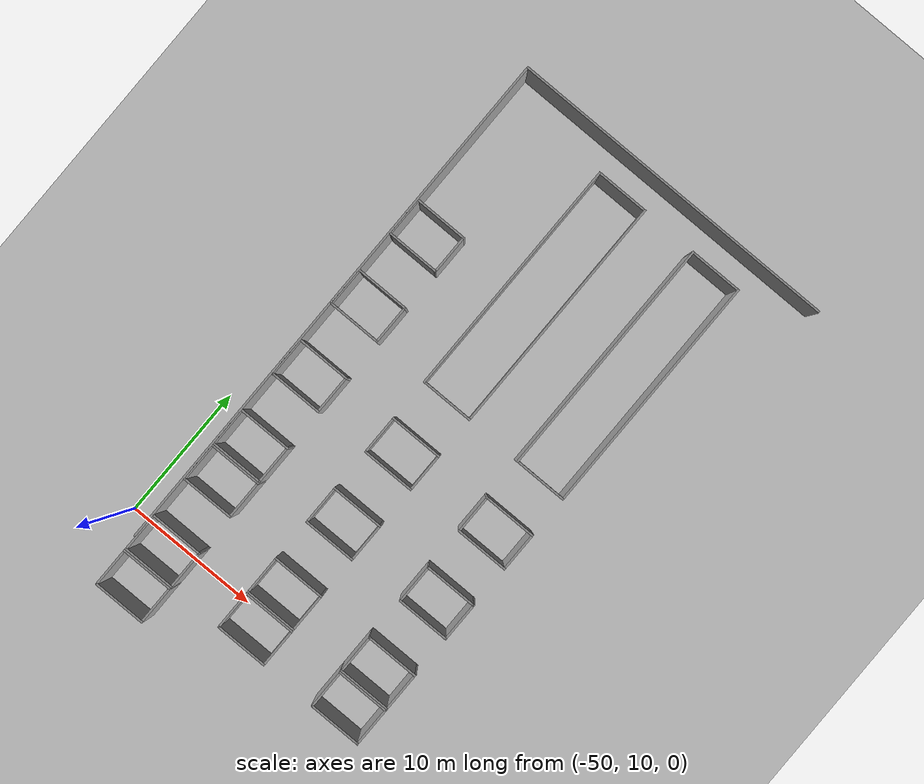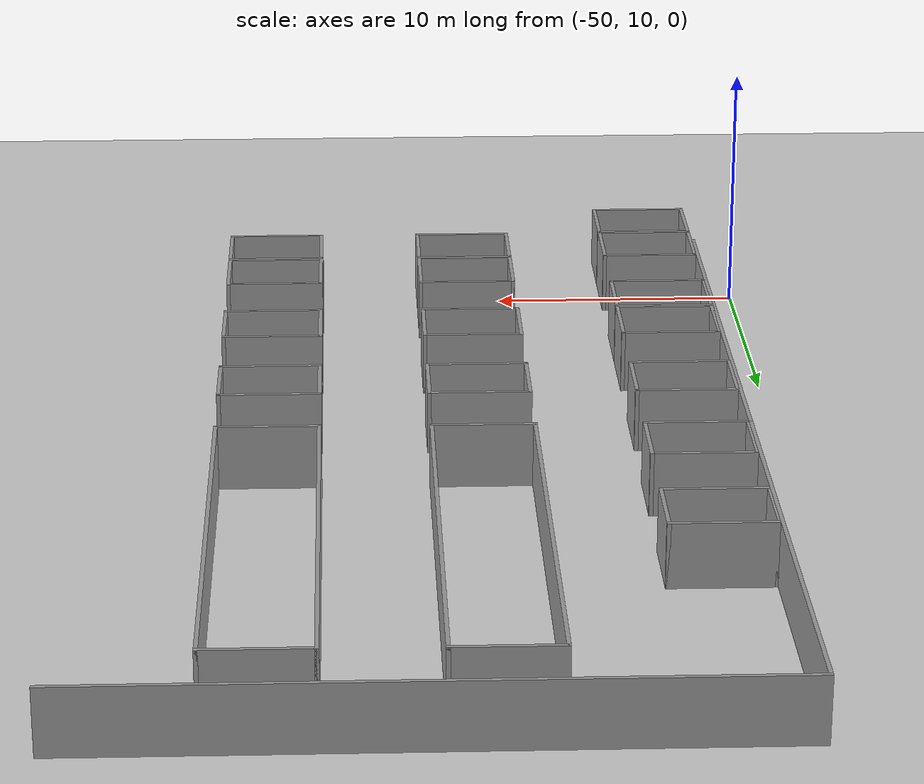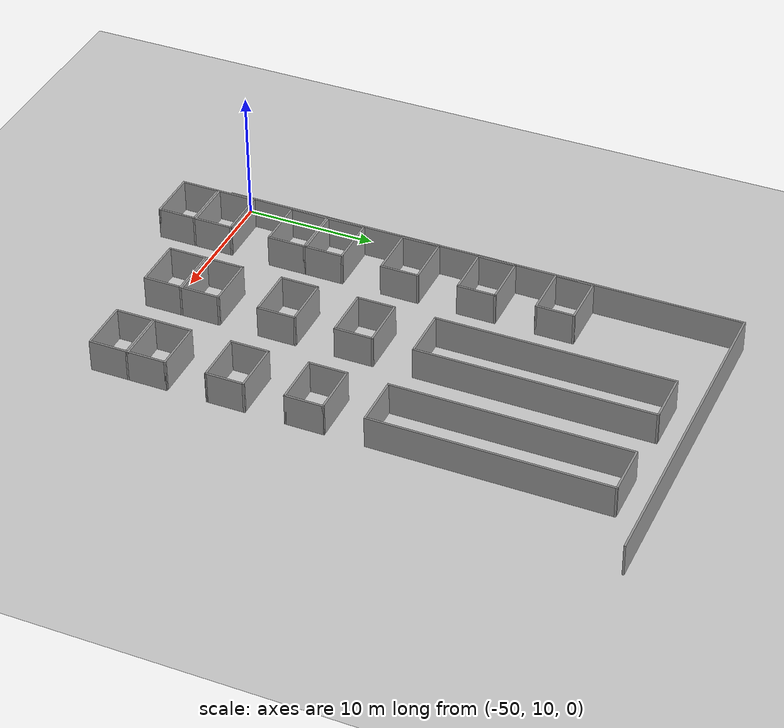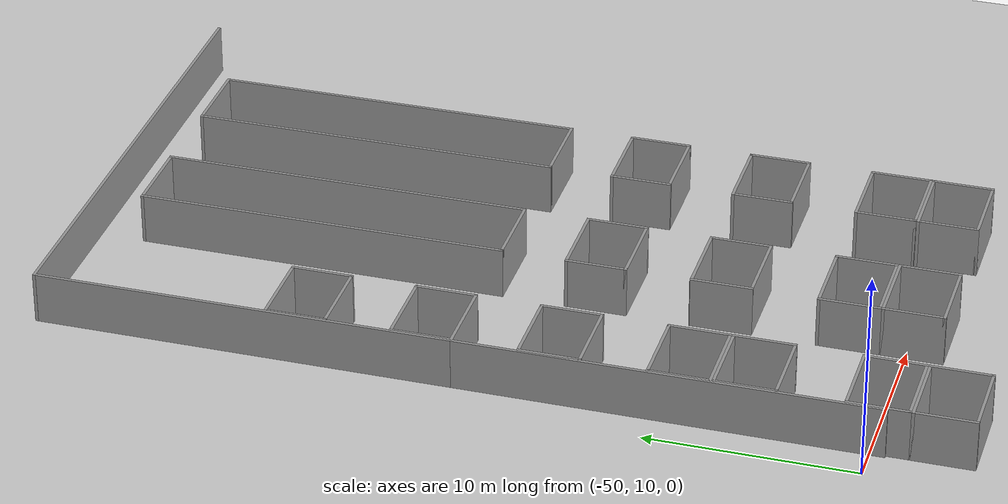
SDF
<sdf version="1.6">
 <world name="default">
  <model name="ground_plane">
   <static>1</static>
   <link name="link">
    <collision name="collision">
     <geometry><plane><normal>0 0 1</normal><size>105 105</size></plane></geometry>
     <surface>
      <contact><collide_bitmask>65535</collide_bitmask></contact>
      <friction><ode><mu>100</mu><mu2>50</mu2></ode></friction>
     </surface>
    </collision>
    <visual name="visual">
     <cast_shadows>0</cast_shadows>
     <geometry><plane><normal>0 0 1</normal><size>105 105</size></plane></geometry>
     <material>
      <script><uri>file://media/materials/scripts/gazebo.material</uri><name>Gazebo/Grey</name></script>
     </material>
    </visual>
   </link>
  </model>
  <model name="wall_v20m_1">
   <pose>-48.4186 19.2715 0 0 -0 0</pose>
   <link name="Wall_35">
    <collision name="Wall_35_Collision">
     <geometry><box><size>20 0.15 2.5</size></box></geometry>
     <pose>0 0 1.25 0 -0 0</pose>
    </collision>
    <visual name="Wall_35_Visual">
     <pose>0 0 1.25 0 -0 0</pose>
     <geometry><box><size>20 0.15 2.5</size></box></geometry>
     <material>
      <script><uri>file://media/materials/scripts/gazebo.material</uri><name>Gazebo/Grey</name></script>
      <ambient>1 1 1 1</ambient>
     </material>
     <meta><layer>0</layer></meta>
    </visual>
    <pose>0 -0 0 0 -0 -1.5708</pose>
   </link>
   <static>1</static>
  </model>
  <model name="wall_v20m_2">
   <pose>-48.4188 39.2704 0 0 -0 0</pose>
   <link name="Wall_35">
    <collision name="Wall_35_Collision">
     <geometry><box><size>20 0.15 2.5</size></box></geometry>
     <pose>0 0 1.25 0 -0 0</pose>
    </collision>
    <visual name="Wall_35_Visual">
     <pose>0 0 1.25 0 -0 0</pose>
     <geometry><box><size>20 0.15 2.5</size></box></geometry>
     <material>
      <script><uri>file://media/materials/scripts/gazebo.material</uri><name>Gazebo/Grey</name></script>
      <ambient>1 1 1 1</ambient>
     </material>
     <meta><layer>0</layer></meta>
    </visual>
    <pose>0 -0 0 0 -0 -1.5708</pose>
   </link>
   <static>1</static>
  </model>
  <model name="wall_25m_3">
   <pose>-35.9923 49.3467 0 0 -0 0</pose>
   <link name="Wall_28">
    <collision name="Wall_28_Collision">
     <geometry><box><size>25 0.15 2.5</size></box></geometry>
     <pose>0 0 1.25 0 -0 0</pose>
    </collision>
    <visual name="Wall_28_Visual">
     <pose>0 0 1.25 0 -0 0</pose>
     <geometry><box><size>25 0.15 2.5</size></box></geometry>
     <material>
      <script><uri>file://media/materials/scripts/gazebo.material</uri><name>Gazebo/Grey</name></script>
      <ambient>1 1 1 1</ambient>
     </material>
     <meta><layer>0</layer></meta>
    </visual>
   </link>
   <static>1</static>
  </model>
  <model name="base3x4_45">
   <pose>-46.3788 6.73628 0 0 -0 0</pose>
   <link name="Wall_18">
    <collision name="Wall_18_Collision">
     <geometry><box><size>3 0.15 2.5</size></box></geometry>
     <pose>0 0 1.25 0 -0 0</pose>
    </collision>
    <visual name="Wall_18_Visual">
     <pose>0 0 1.25 0 -0 0</pose>
     <geometry><box><size>3 0.15 2.5</size></box></geometry>
     <material>
      <script><uri>file://media/materials/scripts/gazebo.material</uri><name>Gazebo/Grey</name></script>
      <ambient>1 1 1 1</ambient>
     </material>
     <meta><layer>0</layer></meta>
    </visual>
    <pose>-1.925 -0 0 0 -0 -1.5708</pose>
   </link>
   <link name="Wall_19">
    <collision name="Wall_19_Collision">
     <geometry><box><size>4 0.15 2.5</size></box></geometry>
     <pose>0 0 1.25 0 -0 0</pose>
    </collision>
    <visual name="Wall_19_Visual">
     <pose>0 0 1.25 0 -0 0</pose>
     <geometry><box><size>4 0.15 2.5</size></box></geometry>
     <material>
      <script><uri>file://media/materials/scripts/gazebo.material</uri><name>Gazebo/Grey</name></script>
      <ambient>1 1 1 1</ambient>
     </material>
     <meta><layer>0</layer></meta>
    </visual>
    <pose>-0 -1.425 0 0 -0 0</pose>
   </link>
   <link name="Wall_20">
    <collision name="Wall_20_Collision">
     <geometry><box><size>3 0.15 2.5</size></box></geometry>
     <pose>0 0 1.25 0 -0 0</pose>
    </collision>
    <visual name="Wall_20_Visual">
     <pose>0 0 1.25 0 -0 0</pose>
     <geometry><box><size>3 0.15 2.5</size></box></geometry>
     <material>
      <script><uri>file://media/materials/scripts/gazebo.material</uri><name>Gazebo/Grey</name></script>
      <ambient>1 1 1 1</ambient>
     </material>
     <meta><layer>0</layer></meta>
    </visual>
    <pose>1.925 -0 0 0 -0 1.5708</pose>
   </link>
   <link name="Wall_21">
    <collision name="Wall_21_Collision">
     <geometry><box><size>4 0.15 2.5</size></box></geometry>
     <pose>0 0 1.25 0 -0 0</pose>
    </collision>
    <visual name="Wall_21_Visual">
     <pose>0 0 1.25 0 -0 0</pose>
     <geometry><box><size>4 0.15 2.5</size></box></geometry>
     <material>
      <script><uri>file://media/materials/scripts/gazebo.material</uri><name>Gazebo/Grey</name></script>
      <ambient>1 1 1 1</ambient>
     </material>
     <meta><layer>0</layer></meta>
    </visual>
    <pose>-0 1.425 0 0 -0 3.14159</pose>
   </link>
   <static>1</static>
  </model>
  <model name="base3x4_46">
   <pose>-46.3764 9.73349 0 0 -0 0</pose>
   <link name="Wall_18">
    <collision name="Wall_18_Collision">
     <geometry><box><size>3 0.15 2.5</size></box></geometry>
     <pose>0 0 1.25 0 -0 0</pose>
    </collision>
    <visual name="Wall_18_Visual">
     <pose>0 0 1.25 0 -0 0</pose>
     <geometry><box><size>3 0.15 2.5</size></box></geometry>
     <material>
      <script><uri>file://media/materials/scripts/gazebo.material</uri><name>Gazebo/Grey</name></script>
      <ambient>1 1 1 1</ambient>
     </material>
     <meta><layer>0</layer></meta>
    </visual>
    <pose>-1.925 -0 0 0 -0 -1.5708</pose>
   </link>
   <link name="Wall_19">
    <collision name="Wall_19_Collision">
     <geometry><box><size>4 0.15 2.5</size></box></geometry>
     <pose>0 0 1.25 0 -0 0</pose>
    </collision>
    <visual name="Wall_19_Visual">
     <pose>0 0 1.25 0 -0 0</pose>
     <geometry><box><size>4 0.15 2.5</size></box></geometry>
     <material>
      <script><uri>file://media/materials/scripts/gazebo.material</uri><name>Gazebo/Grey</name></script>
      <ambient>1 1 1 1</ambient>
     </material>
     <meta><layer>0</layer></meta>
    </visual>
    <pose>-0 -1.425 0 0 -0 0</pose>
   </link>
   <link name="Wall_20">
    <collision name="Wall_20_Collision">
     <geometry><box><size>3 0.15 2.5</size></box></geometry>
     <pose>0 0 1.25 0 -0 0</pose>
    </collision>
    <visual name="Wall_20_Visual">
     <pose>0 0 1.25 0 -0 0</pose>
     <geometry><box><size>3 0.15 2.5</size></box></geometry>
     <material>
      <script><uri>file://media/materials/scripts/gazebo.material</uri><name>Gazebo/Grey</name></script>
      <ambient>1 1 1 1</ambient>
     </material>
     <meta><layer>0</layer></meta>
    </visual>
    <pose>1.925 -0 0 0 -0 1.5708</pose>
   </link>
   <link name="Wall_21">
    <collision name="Wall_21_Collision">
     <geometry><box><size>4 0.15 2.5</size></box></geometry>
     <pose>0 0 1.25 0 -0 0</pose>
    </collision>
    <visual name="Wall_21_Visual">
     <pose>0 0 1.25 0 -0 0</pose>
     <geometry><box><size>4 0.15 2.5</size></box></geometry>
     <material>
      <script><uri>file://media/materials/scripts/gazebo.material</uri><name>Gazebo/Grey</name></script>
      <ambient>1 1 1 1</ambient>
     </material>
     <meta><layer>0</layer></meta>
    </visual>
    <pose>-0 1.425 0 0 -0 3.14159</pose>
   </link>
   <static>1</static>
  </model>
  <model name="base3x4_48">
   <pose>-46.3853 15.7231 0 0 -0 0</pose>
   <link name="Wall_18">
    <collision name="Wall_18_Collision">
     <geometry><box><size>3 0.15 2.5</size></box></geometry>
     <pose>0 0 1.25 0 -0 0</pose>
    </collision>
    <visual name="Wall_18_Visual">
     <pose>0 0 1.25 0 -0 0</pose>
     <geometry><box><size>3 0.15 2.5</size></box></geometry>
     <material>
      <script><uri>file://media/materials/scripts/gazebo.material</uri><name>Gazebo/Grey</name></script>
      <ambient>1 1 1 1</ambient>
     </material>
     <meta><layer>0</layer></meta>
    </visual>
    <pose>-1.925 -0 0 0 -0 -1.5708</pose>
   </link>
   <link name="Wall_19">
    <collision name="Wall_19_Collision">
     <geometry><box><size>4 0.15 2.5</size></box></geometry>
     <pose>0 0 1.25 0 -0 0</pose>
    </collision>
    <visual name="Wall_19_Visual">
     <pose>0 0 1.25 0 -0 0</pose>
     <geometry><box><size>4 0.15 2.5</size></box></geometry>
     <material>
      <script><uri>file://media/materials/scripts/gazebo.material</uri><name>Gazebo/Grey</name></script>
      <ambient>1 1 1 1</ambient>
     </material>
     <meta><layer>0</layer></meta>
    </visual>
    <pose>-0 -1.425 0 0 -0 0</pose>
   </link>
   <link name="Wall_20">
    <collision name="Wall_20_Collision">
     <geometry><box><size>3 0.15 2.5</size></box></geometry>
     <pose>0 0 1.25 0 -0 0</pose>
    </collision>
    <visual name="Wall_20_Visual">
     <pose>0 0 1.25 0 -0 0</pose>
     <geometry><box><size>3 0.15 2.5</size></box></geometry>
     <material>
      <script><uri>file://media/materials/scripts/gazebo.material</uri><name>Gazebo/Grey</name></script>
      <ambient>1 1 1 1</ambient>
     </material>
     <meta><layer>0</layer></meta>
    </visual>
    <pose>1.925 -0 0 0 -0 1.5708</pose>
   </link>
   <link name="Wall_21">
    <collision name="Wall_21_Collision">
     <geometry><box><size>4 0.15 2.5</size></box></geometry>
     <pose>0 0 1.25 0 -0 0</pose>
    </collision>
    <visual name="Wall_21_Visual">
     <pose>0 0 1.25 0 -0 0</pose>
     <geometry><box><size>4 0.15 2.5</size></box></geometry>
     <material>
      <script><uri>file://media/materials/scripts/gazebo.material</uri><name>Gazebo/Grey</name></script>
      <ambient>1 1 1 1</ambient>
     </material>
     <meta><layer>0</layer></meta>
    </visual>
    <pose>-0 1.425 0 0 -0 3.14159</pose>
   </link>
   <static>1</static>
  </model>
  <model name="base3x4_49">
   <pose>-46.3875 18.7223 0 0 -0 0</pose>
   <link name="Wall_18">
    <collision name="Wall_18_Collision">
     <geometry><box><size>3 0.15 2.5</size></box></geometry>
     <pose>0 0 1.25 0 -0 0</pose>
    </collision>
    <visual name="Wall_18_Visual">
     <pose>0 0 1.25 0 -0 0</pose>
     <geometry><box><size>3 0.15 2.5</size></box></geometry>
     <material>
      <script><uri>file://media/materials/scripts/gazebo.material</uri><name>Gazebo/Grey</name></script>
      <ambient>1 1 1 1</ambient>
     </material>
     <meta><layer>0</layer></meta>
    </visual>
    <pose>-1.925 -0 0 0 -0 -1.5708</pose>
   </link>
   <link name="Wall_19">
    <collision name="Wall_19_Collision">
     <geometry><box><size>4 0.15 2.5</size></box></geometry>
     <pose>0 0 1.25 0 -0 0</pose>
    </collision>
    <visual name="Wall_19_Visual">
     <pose>0 0 1.25 0 -0 0</pose>
     <geometry><box><size>4 0.15 2.5</size></box></geometry>
     <material>
      <script><uri>file://media/materials/scripts/gazebo.material</uri><name>Gazebo/Grey</name></script>
      <ambient>1 1 1 1</ambient>
     </material>
     <meta><layer>0</layer></meta>
    </visual>
    <pose>-0 -1.425 0 0 -0 0</pose>
   </link>
   <link name="Wall_20">
    <collision name="Wall_20_Collision">
     <geometry><box><size>3 0.15 2.5</size></box></geometry>
     <pose>0 0 1.25 0 -0 0</pose>
    </collision>
    <visual name="Wall_20_Visual">
     <pose>0 0 1.25 0 -0 0</pose>
     <geometry><box><size>3 0.15 2.5</size></box></geometry>
     <material>
      <script><uri>file://media/materials/scripts/gazebo.material</uri><name>Gazebo/Grey</name></script>
      <ambient>1 1 1 1</ambient>
     </material>
     <meta><layer>0</layer></meta>
    </visual>
    <pose>1.925 -0 0 0 -0 1.5708</pose>
   </link>
   <link name="Wall_21">
    <collision name="Wall_21_Collision">
     <geometry><box><size>4 0.15 2.5</size></box></geometry>
     <pose>0 0 1.25 0 -0 0</pose>
    </collision>
    <visual name="Wall_21_Visual">
     <pose>0 0 1.25 0 -0 0</pose>
     <geometry><box><size>4 0.15 2.5</size></box></geometry>
     <material>
      <script><uri>file://media/materials/scripts/gazebo.material</uri><name>Gazebo/Grey</name></script>
      <ambient>1 1 1 1</ambient>
     </material>
     <meta><layer>0</layer></meta>
    </visual>
    <pose>-0 1.425 0 0 -0 3.14159</pose>
   </link>
   <static>1</static>
  </model>
  <model name="base3x4_51">
   <pose>-46.3918 24.7091 0 0 -0 0</pose>
   <link name="Wall_18">
    <collision name="Wall_18_Collision">
     <geometry><box><size>3 0.15 2.5</size></box></geometry>
     <pose>0 0 1.25 0 -0 0</pose>
    </collision>
    <visual name="Wall_18_Visual">
     <pose>0 0 1.25 0 -0 0</pose>
     <geometry><box><size>3 0.15 2.5</size></box></geometry>
     <material>
      <script><uri>file://media/materials/scripts/gazebo.material</uri><name>Gazebo/Grey</name></script>
      <ambient>1 1 1 1</ambient>
     </material>
     <meta><layer>0</layer></meta>
    </visual>
    <pose>-1.925 -0 0 0 -0 -1.5708</pose>
   </link>
   <link name="Wall_19">
    <collision name="Wall_19_Collision">
     <geometry><box><size>4 0.15 2.5</size></box></geometry>
     <pose>0 0 1.25 0 -0 0</pose>
    </collision>
    <visual name="Wall_19_Visual">
     <pose>0 0 1.25 0 -0 0</pose>
     <geometry><box><size>4 0.15 2.5</size></box></geometry>
     <material>
      <script><uri>file://media/materials/scripts/gazebo.material</uri><name>Gazebo/Grey</name></script>
      <ambient>1 1 1 1</ambient>
     </material>
     <meta><layer>0</layer></meta>
    </visual>
    <pose>-0 -1.425 0 0 -0 0</pose>
   </link>
   <link name="Wall_20">
    <collision name="Wall_20_Collision">
     <geometry><box><size>3 0.15 2.5</size></box></geometry>
     <pose>0 0 1.25 0 -0 0</pose>
    </collision>
    <visual name="Wall_20_Visual">
     <pose>0 0 1.25 0 -0 0</pose>
     <geometry><box><size>3 0.15 2.5</size></box></geometry>
     <material>
      <script><uri>file://media/materials/scripts/gazebo.material</uri><name>Gazebo/Grey</name></script>
      <ambient>1 1 1 1</ambient>
     </material>
     <meta><layer>0</layer></meta>
    </visual>
    <pose>1.925 -0 0 0 -0 1.5708</pose>
   </link>
   <link name="Wall_21">
    <collision name="Wall_21_Collision">
     <geometry><box><size>4 0.15 2.5</size></box></geometry>
     <pose>0 0 1.25 0 -0 0</pose>
    </collision>
    <visual name="Wall_21_Visual">
     <pose>0 0 1.25 0 -0 0</pose>
     <geometry><box><size>4 0.15 2.5</size></box></geometry>
     <material>
      <script><uri>file://media/materials/scripts/gazebo.material</uri><name>Gazebo/Grey</name></script>
      <ambient>1 1 1 1</ambient>
     </material>
     <meta><layer>0</layer></meta>
    </visual>
    <pose>-0 1.425 0 0 -0 3.14159</pose>
   </link>
   <static>1</static>
  </model>
  <model name="base3x4_55">
   <pose>-46.398 36.6733 0 0 -0 0</pose>
   <link name="Wall_18">
    <collision name="Wall_18_Collision">
     <geometry><box><size>3 0.15 2.5</size></box></geometry>
     <pose>0 0 1.25 0 -0 0</pose>
    </collision>
    <visual name="Wall_18_Visual">
     <pose>0 0 1.25 0 -0 0</pose>
     <geometry><box><size>3 0.15 2.5</size></box></geometry>
     <material>
      <script><uri>file://media/materials/scripts/gazebo.material</uri><name>Gazebo/Grey</name></script>
      <ambient>1 1 1 1</ambient>
     </material>
     <meta><layer>0</layer></meta>
    </visual>
    <pose>-1.925 -0 0 0 -0 -1.5708</pose>
   </link>
   <link name="Wall_19">
    <collision name="Wall_19_Collision">
     <geometry><box><size>4 0.15 2.5</size></box></geometry>
     <pose>0 0 1.25 0 -0 0</pose>
    </collision>
    <visual name="Wall_19_Visual">
     <pose>0 0 1.25 0 -0 0</pose>
     <geometry><box><size>4 0.15 2.5</size></box></geometry>
     <material>
      <script><uri>file://media/materials/scripts/gazebo.material</uri><name>Gazebo/Grey</name></script>
      <ambient>1 1 1 1</ambient>
     </material>
     <meta><layer>0</layer></meta>
    </visual>
    <pose>-0 -1.425 0 0 -0 0</pose>
   </link>
   <link name="Wall_20">
    <collision name="Wall_20_Collision">
     <geometry><box><size>3 0.15 2.5</size></box></geometry>
     <pose>0 0 1.25 0 -0 0</pose>
    </collision>
    <visual name="Wall_20_Visual">
     <pose>0 0 1.25 0 -0 0</pose>
     <geometry><box><size>3 0.15 2.5</size></box></geometry>
     <material>
      <script><uri>file://media/materials/scripts/gazebo.material</uri><name>Gazebo/Grey</name></script>
      <ambient>1 1 1 1</ambient>
     </material>
     <meta><layer>0</layer></meta>
    </visual>
    <pose>1.925 -0 0 0 -0 1.5708</pose>
   </link>
   <link name="Wall_21">
    <collision name="Wall_21_Collision">
     <geometry><box><size>4 0.15 2.5</size></box></geometry>
     <pose>0 0 1.25 0 -0 0</pose>
    </collision>
    <visual name="Wall_21_Visual">
     <pose>0 0 1.25 0 -0 0</pose>
     <geometry><box><size>4 0.15 2.5</size></box></geometry>
     <material>
      <script><uri>file://media/materials/scripts/gazebo.material</uri><name>Gazebo/Grey</name></script>
      <ambient>1 1 1 1</ambient>
     </material>
     <meta><layer>0</layer></meta>
    </visual>
    <pose>-0 1.425 0 0 -0 3.14159</pose>
   </link>
   <static>1</static>
  </model>
  <model name="base18x4_3">
   <pose>-30.4275 38.1058 0 0 -0 0</pose>
   <link name="Wall_6">
    <collision name="Wall_6_Collision">
     <geometry><box><size>18 0.15 2.5</size></box></geometry>
     <pose>0 0 1.25 0 -0 0</pose>
    </collision>
    <visual name="Wall_6_Visual">
     <pose>0 0 1.25 0 -0 0</pose>
     <geometry><box><size>18 0.15 2.5</size></box></geometry>
     <material>
      <script><uri>file://media/materials/scripts/gazebo.material</uri><name>Gazebo/Grey</name></script>
      <ambient>1 1 1 1</ambient>
     </material>
     <meta><layer>0</layer></meta>
    </visual>
    <pose>-1.925 0 0 0 -0 -1.5708</pose>
   </link>
   <link name="Wall_7">
    <collision name="Wall_7_Collision">
     <geometry><box><size>4 0.15 2.5</size></box></geometry>
     <pose>0 0 1.25 0 -0 0</pose>
    </collision>
    <visual name="Wall_7_Visual">
     <pose>0 0 1.25 0 -0 0</pose>
     <geometry><box><size>4 0.15 2.5</size></box></geometry>
     <material>
      <script><uri>file://media/materials/scripts/gazebo.material</uri><name>Gazebo/Grey</name></script>
      <ambient>1 1 1 1</ambient>
     </material>
     <meta><layer>0</layer></meta>
    </visual>
    <pose>0 -8.925 0 0 -0 0</pose>
   </link>
   <link name="Wall_8">
    <collision name="Wall_8_Collision">
     <geometry><box><size>18 0.15 2.5</size></box></geometry>
     <pose>0 0 1.25 0 -0 0</pose>
    </collision>
    <visual name="Wall_8_Visual">
     <pose>0 0 1.25 0 -0 0</pose>
     <geometry><box><size>18 0.15 2.5</size></box></geometry>
     <material>
      <script><uri>file://media/materials/scripts/gazebo.material</uri><name>Gazebo/Grey</name></script>
      <ambient>1 1 1 1</ambient>
     </material>
     <meta><layer>0</layer></meta>
    </visual>
    <pose>1.925 0 0 0 -0 1.5708</pose>
   </link>
   <link name="Wall_9">
    <collision name="Wall_9_Collision">
     <geometry><box><size>4 0.15 2.5</size></box></geometry>
     <pose>0 0 1.25 0 -0 0</pose>
    </collision>
    <visual name="Wall_9_Visual">
     <pose>0 0 1.25 0 -0 0</pose>
     <geometry><box><size>4 0.15 2.5</size></box></geometry>
     <material>
      <script><uri>file://media/materials/scripts/gazebo.material</uri><name>Gazebo/Grey</name></script>
      <ambient>1 1 1 1</ambient>
     </material>
     <meta><layer>0</layer></meta>
    </visual>
    <pose>0 8.925 0 0 -0 3.14159</pose>
   </link>
   <static>1</static>
  </model>
  <model name="base3x4_4">
   <pose>-30.4282 9.69605 0 0 -0 0</pose>
   <link name="Wall_18">
    <collision name="Wall_18_Collision">
     <geometry><box><size>3 0.15 2.5</size></box></geometry>
     <pose>0 0 1.25 0 -0 0</pose>
    </collision>
    <visual name="Wall_18_Visual">
     <pose>0 0 1.25 0 -0 0</pose>
     <geometry><box><size>3 0.15 2.5</size></box></geometry>
     <material>
      <script><uri>file://media/materials/scripts/gazebo.material</uri><name>Gazebo/Grey</name></script>
      <ambient>1 1 1 1</ambient>
     </material>
     <meta><layer>0</layer></meta>
    </visual>
    <pose>-1.925 -0 0 0 -0 -1.5708</pose>
   </link>
   <link name="Wall_19">
    <collision name="Wall_19_Collision">
     <geometry><box><size>4 0.15 2.5</size></box></geometry>
     <pose>0 0 1.25 0 -0 0</pose>
    </collision>
    <visual name="Wall_19_Visual">
     <pose>0 0 1.25 0 -0 0</pose>
     <geometry><box><size>4 0.15 2.5</size></box></geometry>
     <material>
      <script><uri>file://media/materials/scripts/gazebo.material</uri><name>Gazebo/Grey</name></script>
      <ambient>1 1 1 1</ambient>
     </material>
     <meta><layer>0</layer></meta>
    </visual>
    <pose>-0 -1.425 0 0 -0 0</pose>
   </link>
   <link name="Wall_20">
    <collision name="Wall_20_Collision">
     <geometry><box><size>3 0.15 2.5</size></box></geometry>
     <pose>0 0 1.25 0 -0 0</pose>
    </collision>
    <visual name="Wall_20_Visual">
     <pose>0 0 1.25 0 -0 0</pose>
     <geometry><box><size>3 0.15 2.5</size></box></geometry>
     <material>
      <script><uri>file://media/materials/scripts/gazebo.material</uri><name>Gazebo/Grey</name></script>
      <ambient>1 1 1 1</ambient>
     </material>
     <meta><layer>0</layer></meta>
    </visual>
    <pose>1.925 -0 0 0 -0 1.5708</pose>
   </link>
   <link name="Wall_21">
    <collision name="Wall_21_Collision">
     <geometry><box><size>4 0.15 2.5</size></box></geometry>
     <pose>0 0 1.25 0 -0 0</pose>
    </collision>
    <visual name="Wall_21_Visual">
     <pose>0 0 1.25 0 -0 0</pose>
     <geometry><box><size>4 0.15 2.5</size></box></geometry>
     <material>
      <script><uri>file://media/materials/scripts/gazebo.material</uri><name>Gazebo/Grey</name></script>
      <ambient>1 1 1 1</ambient>
     </material>
     <meta><layer>0</layer></meta>
    </visual>
    <pose>-0 1.425 0 0 -0 3.14159</pose>
   </link>
   <static>1</static>
  </model>
  <model name="base3x4_10">
   <pose>-38.4448 9.72417 0 0 -0 0</pose>
   <link name="Wall_18">
    <collision name="Wall_18_Collision">
     <geometry><box><size>3 0.15 2.5</size></box></geometry>
     <pose>0 0 1.25 0 -0 0</pose>
    </collision>
    <visual name="Wall_18_Visual">
     <pose>0 0 1.25 0 -0 0</pose>
     <geometry><box><size>3 0.15 2.5</size></box></geometry>
     <material>
      <script><uri>file://media/materials/scripts/gazebo.material</uri><name>Gazebo/Grey</name></script>
      <ambient>1 1 1 1</ambient>
     </material>
     <meta><layer>0</layer></meta>
    </visual>
    <pose>-1.925 -0 0 0 -0 -1.5708</pose>
   </link>
   <link name="Wall_19">
    <collision name="Wall_19_Collision">
     <geometry><box><size>4 0.15 2.5</size></box></geometry>
     <pose>0 0 1.25 0 -0 0</pose>
    </collision>
    <visual name="Wall_19_Visual">
     <pose>0 0 1.25 0 -0 0</pose>
     <geometry><box><size>4 0.15 2.5</size></box></geometry>
     <material>
      <script><uri>file://media/materials/scripts/gazebo.material</uri><name>Gazebo/Grey</name></script>
      <ambient>1 1 1 1</ambient>
     </material>
     <meta><layer>0</layer></meta>
    </visual>
    <pose>-0 -1.425 0 0 -0 0</pose>
   </link>
   <link name="Wall_20">
    <collision name="Wall_20_Collision">
     <geometry><box><size>3 0.15 2.5</size></box></geometry>
     <pose>0 0 1.25 0 -0 0</pose>
    </collision>
    <visual name="Wall_20_Visual">
     <pose>0 0 1.25 0 -0 0</pose>
     <geometry><box><size>3 0.15 2.5</size></box></geometry>
     <material>
      <script><uri>file://media/materials/scripts/gazebo.material</uri><name>Gazebo/Grey</name></script>
      <ambient>1 1 1 1</ambient>
     </material>
     <meta><layer>0</layer></meta>
    </visual>
    <pose>1.925 -0 0 0 -0 1.5708</pose>
   </link>
   <link name="Wall_21">
    <collision name="Wall_21_Collision">
     <geometry><box><size>4 0.15 2.5</size></box></geometry>
     <pose>0 0 1.25 0 -0 0</pose>
    </collision>
    <visual name="Wall_21_Visual">
     <pose>0 0 1.25 0 -0 0</pose>
     <geometry><box><size>4 0.15 2.5</size></box></geometry>
     <material>
      <script><uri>file://media/materials/scripts/gazebo.material</uri><name>Gazebo/Grey</name></script>
      <ambient>1 1 1 1</ambient>
     </material>
     <meta><layer>0</layer></meta>
    </visual>
    <pose>-0 1.425 0 0 -0 3.14159</pose>
   </link>
   <static>1</static>
  </model>
  <model name="base3x4_20">
   <pose>-30.4266 12.6856 0 0 -0 0</pose>
   <link name="Wall_18">
    <collision name="Wall_18_Collision">
     <geometry><box><size>3 0.15 2.5</size></box></geometry>
     <pose>0 0 1.25 0 -0 0</pose>
    </collision>
    <visual name="Wall_18_Visual">
     <pose>0 0 1.25 0 -0 0</pose>
     <geometry><box><size>3 0.15 2.5</size></box></geometry>
     <material>
      <script><uri>file://media/materials/scripts/gazebo.material</uri><name>Gazebo/Grey</name></script>
      <ambient>1 1 1 1</ambient>
     </material>
     <meta><layer>0</layer></meta>
    </visual>
    <pose>-1.925 -0 0 0 -0 -1.5708</pose>
   </link>
   <link name="Wall_19">
    <collision name="Wall_19_Collision">
     <geometry><box><size>4 0.15 2.5</size></box></geometry>
     <pose>0 0 1.25 0 -0 0</pose>
    </collision>
    <visual name="Wall_19_Visual">
     <pose>0 0 1.25 0 -0 0</pose>
     <geometry><box><size>4 0.15 2.5</size></box></geometry>
     <material>
      <script><uri>file://media/materials/scripts/gazebo.material</uri><name>Gazebo/Grey</name></script>
      <ambient>1 1 1 1</ambient>
     </material>
     <meta><layer>0</layer></meta>
    </visual>
    <pose>-0 -1.425 0 0 -0 0</pose>
   </link>
   <link name="Wall_20">
    <collision name="Wall_20_Collision">
     <geometry><box><size>3 0.15 2.5</size></box></geometry>
     <pose>0 0 1.25 0 -0 0</pose>
    </collision>
    <visual name="Wall_20_Visual">
     <pose>0 0 1.25 0 -0 0</pose>
     <geometry><box><size>3 0.15 2.5</size></box></geometry>
     <material>
      <script><uri>file://media/materials/scripts/gazebo.material</uri><name>Gazebo/Grey</name></script>
      <ambient>1 1 1 1</ambient>
     </material>
     <meta><layer>0</layer></meta>
    </visual>
    <pose>1.925 -0 0 0 -0 1.5708</pose>
   </link>
   <link name="Wall_21">
    <collision name="Wall_21_Collision">
     <geometry><box><size>4 0.15 2.5</size></box></geometry>
     <pose>0 0 1.25 0 -0 0</pose>
    </collision>
    <visual name="Wall_21_Visual">
     <pose>0 0 1.25 0 -0 0</pose>
     <geometry><box><size>4 0.15 2.5</size></box></geometry>
     <material>
      <script><uri>file://media/materials/scripts/gazebo.material</uri><name>Gazebo/Grey</name></script>
      <ambient>1 1 1 1</ambient>
     </material>
     <meta><layer>0</layer></meta>
    </visual>
    <pose>-0 1.425 0 0 -0 3.14159</pose>
   </link>
   <static>1</static>
  </model>
  <model name="base3x4_44">
   <pose>-38.4474 12.7122 0 0 -0 0</pose>
   <link name="Wall_18">
    <collision name="Wall_18_Collision">
     <geometry><box><size>3 0.15 2.5</size></box></geometry>
     <pose>0 0 1.25 0 -0 0</pose>
    </collision>
    <visual name="Wall_18_Visual">
     <pose>0 0 1.25 0 -0 0</pose>
     <geometry><box><size>3 0.15 2.5</size></box></geometry>
     <material>
      <script><uri>file://media/materials/scripts/gazebo.material</uri><name>Gazebo/Grey</name></script>
      <ambient>1 1 1 1</ambient>
     </material>
     <meta><layer>0</layer></meta>
    </visual>
    <pose>-1.925 -0 0 0 -0 -1.5708</pose>
   </link>
   <link name="Wall_19">
    <collision name="Wall_19_Collision">
     <geometry><box><size>4 0.15 2.5</size></box></geometry>
     <pose>0 0 1.25 0 -0 0</pose>
    </collision>
    <visual name="Wall_19_Visual">
     <pose>0 0 1.25 0 -0 0</pose>
     <geometry><box><size>4 0.15 2.5</size></box></geometry>
     <material>
      <script><uri>file://media/materials/scripts/gazebo.material</uri><name>Gazebo/Grey</name></script>
      <ambient>1 1 1 1</ambient>
     </material>
     <meta><layer>0</layer></meta>
    </visual>
    <pose>-0 -1.425 0 0 -0 0</pose>
   </link>
   <link name="Wall_20">
    <collision name="Wall_20_Collision">
     <geometry><box><size>3 0.15 2.5</size></box></geometry>
     <pose>0 0 1.25 0 -0 0</pose>
    </collision>
    <visual name="Wall_20_Visual">
     <pose>0 0 1.25 0 -0 0</pose>
     <geometry><box><size>3 0.15 2.5</size></box></geometry>
     <material>
      <script><uri>file://media/materials/scripts/gazebo.material</uri><name>Gazebo/Grey</name></script>
      <ambient>1 1 1 1</ambient>
     </material>
     <meta><layer>0</layer></meta>
    </visual>
    <pose>1.925 -0 0 0 -0 1.5708</pose>
   </link>
   <link name="Wall_21">
    <collision name="Wall_21_Collision">
     <geometry><box><size>4 0.15 2.5</size></box></geometry>
     <pose>0 0 1.25 0 -0 0</pose>
    </collision>
    <visual name="Wall_21_Visual">
     <pose>0 0 1.25 0 -0 0</pose>
     <geometry><box><size>4 0.15 2.5</size></box></geometry>
     <material>
      <script><uri>file://media/materials/scripts/gazebo.material</uri><name>Gazebo/Grey</name></script>
      <ambient>1 1 1 1</ambient>
     </material>
     <meta><layer>0</layer></meta>
    </visual>
    <pose>-0 1.425 0 0 -0 3.14159</pose>
   </link>
   <static>1</static>
  </model>
  <model name="base3x4_84">
   <pose>-30.4269 18.6749 0 0 -0 0</pose>
   <link name="Wall_18">
    <collision name="Wall_18_Collision">
     <geometry><box><size>3 0.15 2.5</size></box></geometry>
     <pose>0 0 1.25 0 -0 0</pose>
    </collision>
    <visual name="Wall_18_Visual">
     <pose>0 0 1.25 0 -0 0</pose>
     <geometry><box><size>3 0.15 2.5</size></box></geometry>
     <material>
      <script><uri>file://media/materials/scripts/gazebo.material</uri><name>Gazebo/Grey</name></script>
      <ambient>1 1 1 1</ambient>
     </material>
     <meta><layer>0</layer></meta>
    </visual>
    <pose>-1.925 -0 0 0 -0 -1.5708</pose>
   </link>
   <link name="Wall_19">
    <collision name="Wall_19_Collision">
     <geometry><box><size>4 0.15 2.5</size></box></geometry>
     <pose>0 0 1.25 0 -0 0</pose>
    </collision>
    <visual name="Wall_19_Visual">
     <pose>0 0 1.25 0 -0 0</pose>
     <geometry><box><size>4 0.15 2.5</size></box></geometry>
     <material>
      <script><uri>file://media/materials/scripts/gazebo.material</uri><name>Gazebo/Grey</name></script>
      <ambient>1 1 1 1</ambient>
     </material>
     <meta><layer>0</layer></meta>
    </visual>
    <pose>-0 -1.425 0 0 -0 0</pose>
   </link>
   <link name="Wall_20">
    <collision name="Wall_20_Collision">
     <geometry><box><size>3 0.15 2.5</size></box></geometry>
     <pose>0 0 1.25 0 -0 0</pose>
    </collision>
    <visual name="Wall_20_Visual">
     <pose>0 0 1.25 0 -0 0</pose>
     <geometry><box><size>3 0.15 2.5</size></box></geometry>
     <material>
      <script><uri>file://media/materials/scripts/gazebo.material</uri><name>Gazebo/Grey</name></script>
      <ambient>1 1 1 1</ambient>
     </material>
     <meta><layer>0</layer></meta>
    </visual>
    <pose>1.925 -0 0 0 -0 1.5708</pose>
   </link>
   <link name="Wall_21">
    <collision name="Wall_21_Collision">
     <geometry><box><size>4 0.15 2.5</size></box></geometry>
     <pose>0 0 1.25 0 -0 0</pose>
    </collision>
    <visual name="Wall_21_Visual">
     <pose>0 0 1.25 0 -0 0</pose>
     <geometry><box><size>4 0.15 2.5</size></box></geometry>
     <material>
      <script><uri>file://media/materials/scripts/gazebo.material</uri><name>Gazebo/Grey</name></script>
      <ambient>1 1 1 1</ambient>
     </material>
     <meta><layer>0</layer></meta>
    </visual>
    <pose>-0 1.425 0 0 -0 3.14159</pose>
   </link>
   <static>1</static>
  </model>
  <model name="base3x4_86">
   <pose>-38.4521 18.7044 0 0 -0 0</pose>
   <link name="Wall_18">
    <collision name="Wall_18_Collision">
     <geometry><box><size>3 0.15 2.5</size></box></geometry>
     <pose>0 0 1.25 0 -0 0</pose>
    </collision>
    <visual name="Wall_18_Visual">
     <pose>0 0 1.25 0 -0 0</pose>
     <geometry><box><size>3 0.15 2.5</size></box></geometry>
     <material>
      <script><uri>file://media/materials/scripts/gazebo.material</uri><name>Gazebo/Grey</name></script>
      <ambient>1 1 1 1</ambient>
     </material>
     <meta><layer>0</layer></meta>
    </visual>
    <pose>-1.925 -0 0 0 -0 -1.5708</pose>
   </link>
   <link name="Wall_19">
    <collision name="Wall_19_Collision">
     <geometry><box><size>4 0.15 2.5</size></box></geometry>
     <pose>0 0 1.25 0 -0 0</pose>
    </collision>
    <visual name="Wall_19_Visual">
     <pose>0 0 1.25 0 -0 0</pose>
     <geometry><box><size>4 0.15 2.5</size></box></geometry>
     <material>
      <script><uri>file://media/materials/scripts/gazebo.material</uri><name>Gazebo/Grey</name></script>
      <ambient>1 1 1 1</ambient>
     </material>
     <meta><layer>0</layer></meta>
    </visual>
    <pose>-0 -1.425 0 0 -0 0</pose>
   </link>
   <link name="Wall_20">
    <collision name="Wall_20_Collision">
     <geometry><box><size>3 0.15 2.5</size></box></geometry>
     <pose>0 0 1.25 0 -0 0</pose>
    </collision>
    <visual name="Wall_20_Visual">
     <pose>0 0 1.25 0 -0 0</pose>
     <geometry><box><size>3 0.15 2.5</size></box></geometry>
     <material>
      <script><uri>file://media/materials/scripts/gazebo.material</uri><name>Gazebo/Grey</name></script>
      <ambient>1 1 1 1</ambient>
     </material>
     <meta><layer>0</layer></meta>
    </visual>
    <pose>1.925 -0 0 0 -0 1.5708</pose>
   </link>
   <link name="Wall_21">
    <collision name="Wall_21_Collision">
     <geometry><box><size>4 0.15 2.5</size></box></geometry>
     <pose>0 0 1.25 0 -0 0</pose>
    </collision>
    <visual name="Wall_21_Visual">
     <pose>0 0 1.25 0 -0 0</pose>
     <geometry><box><size>4 0.15 2.5</size></box></geometry>
     <material>
      <script><uri>file://media/materials/scripts/gazebo.material</uri><name>Gazebo/Grey</name></script>
      <ambient>1 1 1 1</ambient>
     </material>
     <meta><layer>0</layer></meta>
    </visual>
    <pose>-0 1.425 0 0 -0 3.14159</pose>
   </link>
   <static>1</static>
  </model>
  <model name="base18x4_0">
   <pose>-38.4538 38.1688 0 0 -0 0</pose>
   <link name="Wall_6">
    <collision name="Wall_6_Collision">
     <geometry><box><size>18 0.15 2.5</size></box></geometry>
     <pose>0 0 1.25 0 -0 0</pose>
    </collision>
    <visual name="Wall_6_Visual">
     <pose>0 0 1.25 0 -0 0</pose>
     <geometry><box><size>18 0.15 2.5</size></box></geometry>
     <material>
      <script><uri>file://media/materials/scripts/gazebo.material</uri><name>Gazebo/Grey</name></script>
      <ambient>1 1 1 1</ambient>
     </material>
     <meta><layer>0</layer></meta>
    </visual>
    <pose>-1.925 0 0 0 -0 -1.5708</pose>
   </link>
   <link name="Wall_7">
    <collision name="Wall_7_Collision">
     <geometry><box><size>4 0.15 2.5</size></box></geometry>
     <pose>0 0 1.25 0 -0 0</pose>
    </collision>
    <visual name="Wall_7_Visual">
     <pose>0 0 1.25 0 -0 0</pose>
     <geometry><box><size>4 0.15 2.5</size></box></geometry>
     <material>
      <script><uri>file://media/materials/scripts/gazebo.material</uri><name>Gazebo/Grey</name></script>
      <ambient>1 1 1 1</ambient>
     </material>
     <meta><layer>0</layer></meta>
    </visual>
    <pose>0 -8.925 0 0 -0 0</pose>
   </link>
   <link name="Wall_8">
    <collision name="Wall_8_Collision">
     <geometry><box><size>18 0.15 2.5</size></box></geometry>
     <pose>0 0 1.25 0 -0 0</pose>
    </collision>
    <visual name="Wall_8_Visual">
     <pose>0 0 1.25 0 -0 0</pose>
     <geometry><box><size>18 0.15 2.5</size></box></geometry>
     <material>
      <script><uri>file://media/materials/scripts/gazebo.material</uri><name>Gazebo/Grey</name></script>
      <ambient>1 1 1 1</ambient>
     </material>
     <meta><layer>0</layer></meta>
    </visual>
    <pose>1.925 0 0 0 -0 1.5708</pose>
   </link>
   <link name="Wall_9">
    <collision name="Wall_9_Collision">
     <geometry><box><size>4 0.15 2.5</size></box></geometry>
     <pose>0 0 1.25 0 -0 0</pose>
    </collision>
    <visual name="Wall_9_Visual">
     <pose>0 0 1.25 0 -0 0</pose>
     <geometry><box><size>4 0.15 2.5</size></box></geometry>
     <material>
      <script><uri>file://media/materials/scripts/gazebo.material</uri><name>Gazebo/Grey</name></script>
      <ambient>1 1 1 1</ambient>
     </material>
     <meta><layer>0</layer></meta>
    </visual>
    <pose>0 8.925 0 0 -0 3.14159</pose>
   </link>
   <static>1</static>
  </model>
  <model name="base3x4_85">
   <pose>-30.4252 24.6539 0 0 -0 0</pose>
   <link name="Wall_18">
    <collision name="Wall_18_Collision">
     <geometry><box><size>3 0.15 2.5</size></box></geometry>
     <pose>0 0 1.25 0 -0 0</pose>
    </collision>
    <visual name="Wall_18_Visual">
     <pose>0 0 1.25 0 -0 0</pose>
     <geometry><box><size>3 0.15 2.5</size></box></geometry>
     <material>
      <script><uri>file://media/materials/scripts/gazebo.material</uri><name>Gazebo/Grey</name></script>
      <ambient>1 1 1 1</ambient>
     </material>
     <meta><layer>0</layer></meta>
    </visual>
    <pose>-1.925 -0 0 0 -0 -1.5708</pose>
   </link>
   <link name="Wall_19">
    <collision name="Wall_19_Collision">
     <geometry><box><size>4 0.15 2.5</size></box></geometry>
     <pose>0 0 1.25 0 -0 0</pose>
    </collision>
    <visual name="Wall_19_Visual">
     <pose>0 0 1.25 0 -0 0</pose>
     <geometry><box><size>4 0.15 2.5</size></box></geometry>
     <material>
      <script><uri>file://media/materials/scripts/gazebo.material</uri><name>Gazebo/Grey</name></script>
      <ambient>1 1 1 1</ambient>
     </material>
     <meta><layer>0</layer></meta>
    </visual>
    <pose>-0 -1.425 0 0 -0 0</pose>
   </link>
   <link name="Wall_20">
    <collision name="Wall_20_Collision">
     <geometry><box><size>3 0.15 2.5</size></box></geometry>
     <pose>0 0 1.25 0 -0 0</pose>
    </collision>
    <visual name="Wall_20_Visual">
     <pose>0 0 1.25 0 -0 0</pose>
     <geometry><box><size>3 0.15 2.5</size></box></geometry>
     <material>
      <script><uri>file://media/materials/scripts/gazebo.material</uri><name>Gazebo/Grey</name></script>
      <ambient>1 1 1 1</ambient>
     </material>
     <meta><layer>0</layer></meta>
    </visual>
    <pose>1.925 -0 0 0 -0 1.5708</pose>
   </link>
   <link name="Wall_21">
    <collision name="Wall_21_Collision">
     <geometry><box><size>4 0.15 2.5</size></box></geometry>
     <pose>0 0 1.25 0 -0 0</pose>
    </collision>
    <visual name="Wall_21_Visual">
     <pose>0 0 1.25 0 -0 0</pose>
     <geometry><box><size>4 0.15 2.5</size></box></geometry>
     <material>
      <script><uri>file://media/materials/scripts/gazebo.material</uri><name>Gazebo/Grey</name></script>
      <ambient>1 1 1 1</ambient>
     </material>
     <meta><layer>0</layer></meta>
    </visual>
    <pose>-0 1.425 0 0 -0 3.14159</pose>
   </link>
   <static>1</static>
  </model>
  <model name="base3x4_88">
   <pose>-38.4548 24.6871 0 0 -0 0</pose>
   <link name="Wall_18">
    <collision name="Wall_18_Collision">
     <geometry><box><size>3 0.15 2.5</size></box></geometry>
     <pose>0 0 1.25 0 -0 0</pose>
    </collision>
    <visual name="Wall_18_Visual">
     <pose>0 0 1.25 0 -0 0</pose>
     <geometry><box><size>3 0.15 2.5</size></box></geometry>
     <material>
      <script><uri>file://media/materials/scripts/gazebo.material</uri><name>Gazebo/Grey</name></script>
      <ambient>1 1 1 1</ambient>
     </material>
     <meta><layer>0</layer></meta>
    </visual>
    <pose>-1.925 -0 0 0 -0 -1.5708</pose>
   </link>
   <link name="Wall_19">
    <collision name="Wall_19_Collision">
     <geometry><box><size>4 0.15 2.5</size></box></geometry>
     <pose>0 0 1.25 0 -0 0</pose>
    </collision>
    <visual name="Wall_19_Visual">
     <pose>0 0 1.25 0 -0 0</pose>
     <geometry><box><size>4 0.15 2.5</size></box></geometry>
     <material>
      <script><uri>file://media/materials/scripts/gazebo.material</uri><name>Gazebo/Grey</name></script>
      <ambient>1 1 1 1</ambient>
     </material>
     <meta><layer>0</layer></meta>
    </visual>
    <pose>-0 -1.425 0 0 -0 0</pose>
   </link>
   <link name="Wall_20">
    <collision name="Wall_20_Collision">
     <geometry><box><size>3 0.15 2.5</size></box></geometry>
     <pose>0 0 1.25 0 -0 0</pose>
    </collision>
    <visual name="Wall_20_Visual">
     <pose>0 0 1.25 0 -0 0</pose>
     <geometry><box><size>3 0.15 2.5</size></box></geometry>
     <material>
      <script><uri>file://media/materials/scripts/gazebo.material</uri><name>Gazebo/Grey</name></script>
      <ambient>1 1 1 1</ambient>
     </material>
     <meta><layer>0</layer></meta>
    </visual>
    <pose>1.925 -0 0 0 -0 1.5708</pose>
   </link>
   <link name="Wall_21">
    <collision name="Wall_21_Collision">
     <geometry><box><size>4 0.15 2.5</size></box></geometry>
     <pose>0 0 1.25 0 -0 0</pose>
    </collision>
    <visual name="Wall_21_Visual">
     <pose>0 0 1.25 0 -0 0</pose>
     <geometry><box><size>4 0.15 2.5</size></box></geometry>
     <material>
      <script><uri>file://media/materials/scripts/gazebo.material</uri><name>Gazebo/Grey</name></script>
      <ambient>1 1 1 1</ambient>
     </material>
     <meta><layer>0</layer></meta>
    </visual>
    <pose>-0 1.425 0 0 -0 3.14159</pose>
   </link>
   <static>1</static>
  </model>
  <model name="base3x4_93">
   <pose>-46.3903 30.6887 0 0 -0 0</pose>
   <link name="Wall_18">
    <collision name="Wall_18_Collision">
     <geometry><box><size>3 0.15 2.5</size></box></geometry>
     <pose>0 0 1.25 0 -0 0</pose>
    </collision>
    <visual name="Wall_18_Visual">
     <pose>0 0 1.25 0 -0 0</pose>
     <geometry><box><size>3 0.15 2.5</size></box></geometry>
     <material>
      <script><uri>file://media/materials/scripts/gazebo.material</uri><name>Gazebo/Grey</name></script>
      <ambient>1 1 1 1</ambient>
     </material>
     <meta><layer>0</layer></meta>
    </visual>
    <pose>-1.925 -0 0 0 -0 -1.5708</pose>
   </link>
   <link name="Wall_19">
    <collision name="Wall_19_Collision">
     <geometry><box><size>4 0.15 2.5</size></box></geometry>
     <pose>0 0 1.25 0 -0 0</pose>
    </collision>
    <visual name="Wall_19_Visual">
     <pose>0 0 1.25 0 -0 0</pose>
     <geometry><box><size>4 0.15 2.5</size></box></geometry>
     <material>
      <script><uri>file://media/materials/scripts/gazebo.material</uri><name>Gazebo/Grey</name></script>
      <ambient>1 1 1 1</ambient>
     </material>
     <meta><layer>0</layer></meta>
    </visual>
    <pose>-0 -1.425 0 0 -0 0</pose>
   </link>
   <link name="Wall_20">
    <collision name="Wall_20_Collision">
     <geometry><box><size>3 0.15 2.5</size></box></geometry>
     <pose>0 0 1.25 0 -0 0</pose>
    </collision>
    <visual name="Wall_20_Visual">
     <pose>0 0 1.25 0 -0 0</pose>
     <geometry><box><size>3 0.15 2.5</size></box></geometry>
     <material>
      <script><uri>file://media/materials/scripts/gazebo.material</uri><name>Gazebo/Grey</name></script>
      <ambient>1 1 1 1</ambient>
     </material>
     <meta><layer>0</layer></meta>
    </visual>
    <pose>1.925 -0 0 0 -0 1.5708</pose>
   </link>
   <link name="Wall_21">
    <collision name="Wall_21_Collision">
     <geometry><box><size>4 0.15 2.5</size></box></geometry>
     <pose>0 0 1.25 0 -0 0</pose>
    </collision>
    <visual name="Wall_21_Visual">
     <pose>0 0 1.25 0 -0 0</pose>
     <geometry><box><size>4 0.15 2.5</size></box></geometry>
     <material>
      <script><uri>file://media/materials/scripts/gazebo.material</uri><name>Gazebo/Grey</name></script>
      <ambient>1 1 1 1</ambient>
     </material>
     <meta><layer>0</layer></meta>
    </visual>
    <pose>-0 1.425 0 0 -0 3.14159</pose>
   </link>
   <static>1</static>
  </model>
 </world>
</sdf>
